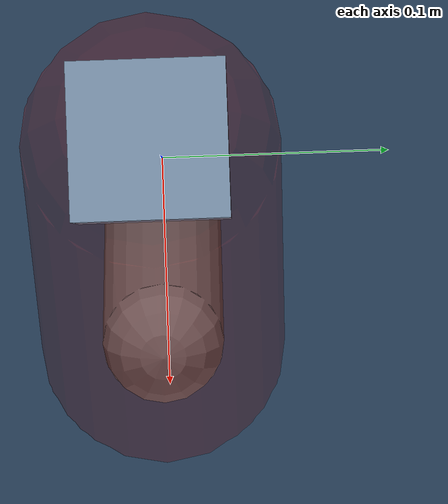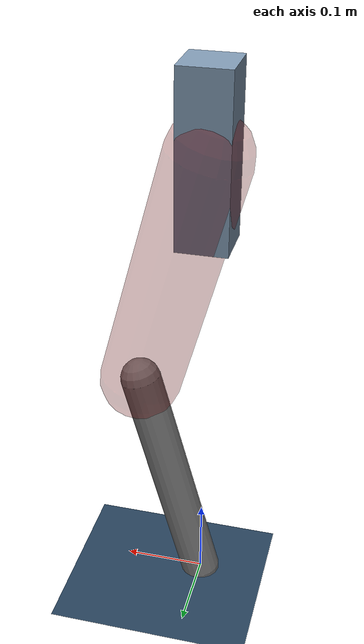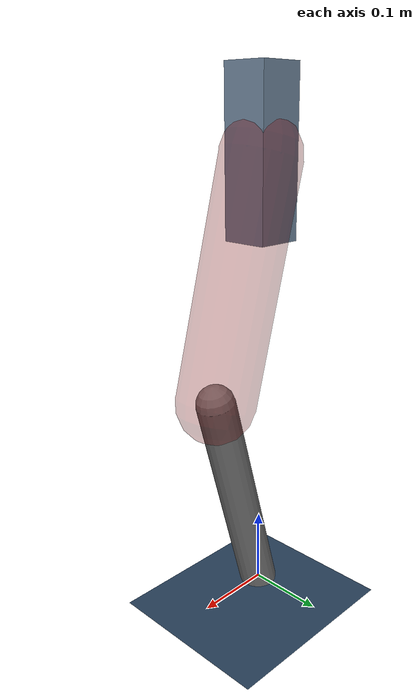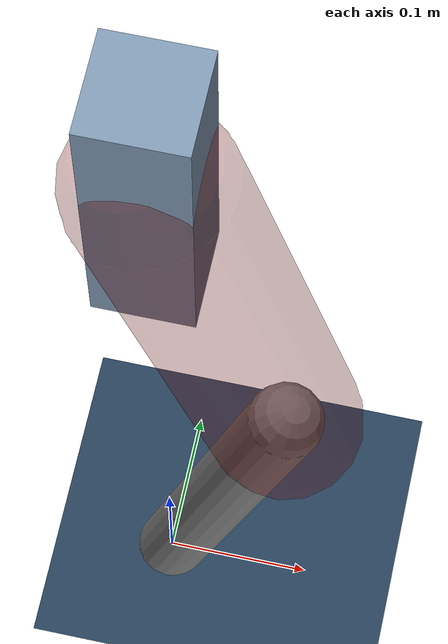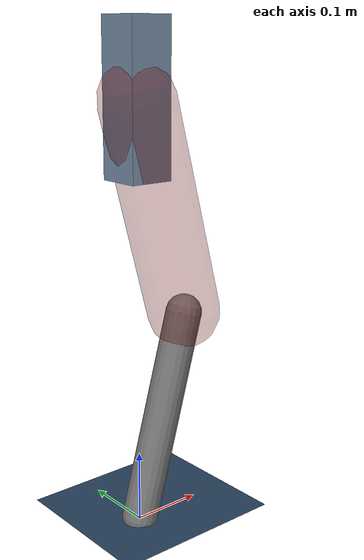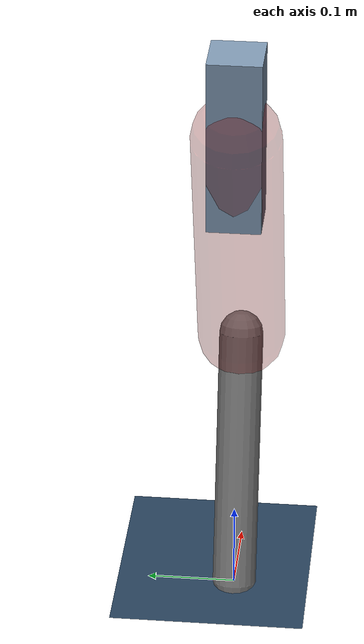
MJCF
<mujoco model="Hopper2D">
	<compiler inertiafromgeom="true" angle="radian" />
	<option timestep="0.001" integrator="implicit" cone="elliptic" solver="Newton" tolerance="1e-10" />

	<default>
		<geom contype="1" conaffinity="1" condim="3" friction="2 0.005 0.0001" solref="0.005 1" />
		<joint limited="true" damping="0.1" />
	</default>

	<asset>
		<texture name="skybox" type="skybox" builtin="gradient" rgb1=".4 .6 .8" rgb2="0 0 0" width="800" height="800" />
		<texture name="grid" type="2d" builtin="checker" rgb1=".1 .2 .3" rgb2=".2 .3 .4" width="300" height="300" mark="edge" markrgb=".2 .3 .4" />
		<material name="ground" texture="grid" texrepeat="1 1" texuniform="true" reflectance="0.1" />
		<material name="leg" rgba="0.5 0.6 0.7 1" />
	</asset>

	<worldbody>

		<geom name="floor" type="plane" size="5 5 0.25" material="ground" />

		<light directional="false" diffuse="0.8 0.8 0.8" specular="0.3 0.3 0.3" pos="0 0 2" dir="0 0 -1" />
		<light mode="targetbodycom" target="base" directional="false" diffuse="0.8 0.8 0.8" specular="0.3 0.3 0.3" pos="0 0 2" dir="0 0 -1" />

		<camera name="fixed" pos="0 -2 1" xyaxes="1 0 0 0 0 1" />
		<camera name="tracking" mode="trackcom" pos="0 -3 1" />

		<body name="root" pos="0 0 0.5789638724293207">
			<joint name="slide_x" type="slide" axis="1 0 0" range="-100 100" />
			<joint name="slide_z" type="slide" axis="0 0 1" range="0 10" />

			<body name="base" pos="0 0 0">
				<geom name="torso" type="box" size="0.03 0.03 0.1" mass="3.497" material="leg" />

				<body name="link1" pos="0 0 0" euler="0 1.3034998395704513 0">
					<joint type="hinge" axis="0 -1 0" pos="0 0 0" name="hinge1" limited="true" range="-3.14 3.14" stiffness="0" damping="0.1" />
					<geom name="thigh" type="capsule" fromto="0 0 0 0.2996066152957346 0 0" size="0.05" rgba="0.5 0 0 0.3" mass="0.9876378612984835" />

					<body name="link2" pos="0.2996066152957346 0 0" euler="0 0.5336882964229325 0">
						<joint type="hinge" axis="0 -1 0" pos="0 0 0" name="hinge2" limited="true" range="-3.14 3.14" stiffness="0" damping="0.1" />
						<geom name="shank" type="capsule" fromto="0 0 0 0.30059978656765907 0 0" size="0.025" mass="0.48387982925412726" />

					</body>
				</body>
			</body>
		</body>
	</worldbody>

	<actuator>
		<motor name="torque1" joint="hinge1" ctrlrange="-207.65122146279074 207.65122146279074" ctrllimited="true" gear="1" />
		<motor name="torque2" joint="hinge2" ctrlrange="-88.74003298210604 88.74003298210604" ctrllimited="true" gear="1" />
	</actuator>
</mujoco>
